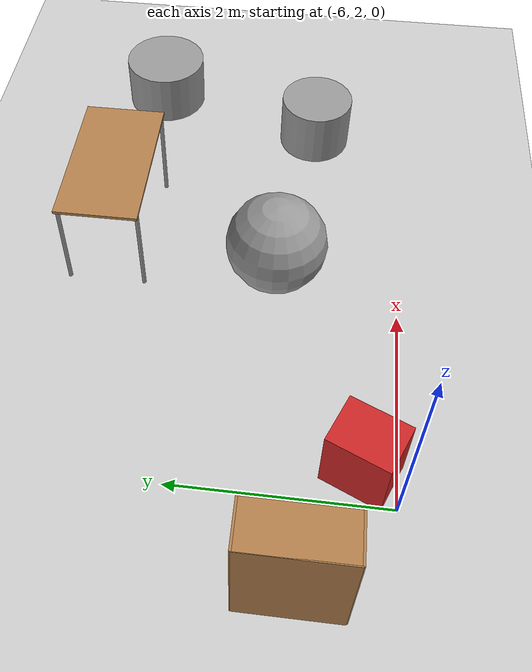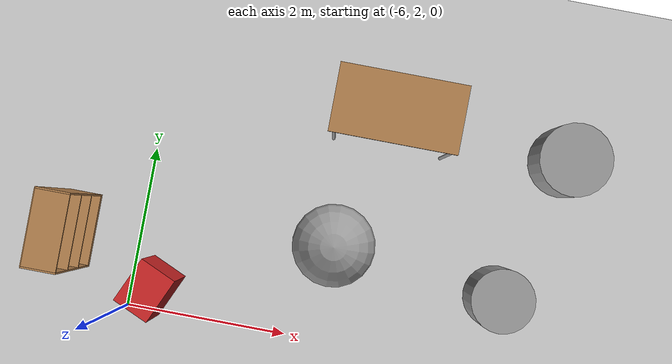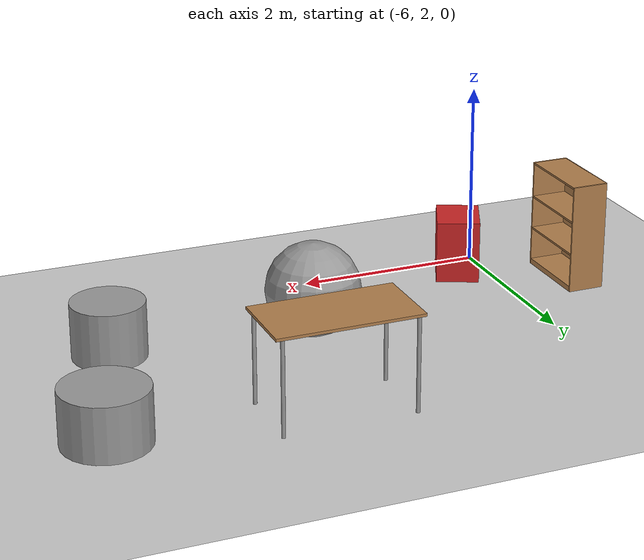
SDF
<sdf version="1.6">
 <world name="default">
  <model name="ground_plane">
   <static>1</static>
   <link name="link">
    <collision name="collision">
     <geometry><plane><normal>0 0 1</normal><size>100 100</size></plane></geometry>
     <surface>
      <contact><collide_bitmask>65535</collide_bitmask></contact>
      <friction><ode><mu>100</mu><mu2>50</mu2></ode></friction>
     </surface>
    </collision>
    <visual name="visual">
     <cast_shadows>0</cast_shadows>
     <geometry><plane><normal>0 0 1</normal><size>100 100</size></plane></geometry>
     <material>
      <script><uri>file://media/materials/scripts/gazebo.material</uri><name>Gazebo/Grey</name></script>
     </material>
    </visual>
   </link>
  </model>
  <model name="bookshelf">
   <static>1</static>
   <link name="link">
    <inertial><mass>1</mass></inertial>
    <collision name="back">
     <pose>0 0.005 0.6 0 -0 0</pose>
     <geometry><box><size>0.9 0.01 1.2</size></box></geometry>
    </collision>
    <visual name="visual1">
     <pose>0 0.005 0.6 0 -0 0</pose>
     <geometry><box><size>0.9 0.01 1.2</size></box></geometry>
     <material>
      <script><uri>file://media/materials/scripts/gazebo.material</uri><name>Gazebo/Wood</name></script>
     </material>
    </visual>
    <collision name="left_side">
     <pose>0.45 -0.195 0.6 0 -0 0</pose>
     <geometry><box><size>0.02 0.4 1.2</size></box></geometry>
    </collision>
    <visual name="visual2">
     <pose>0.45 -0.195 0.6 0 -0 0</pose>
     <geometry><box><size>0.02 0.4 1.2</size></box></geometry>
     <material>
      <script><uri>file://media/materials/scripts/gazebo.material</uri><name>Gazebo/Wood</name></script>
     </material>
    </visual>
    <collision name="right_side">
     <pose>-0.45 -0.195 0.6 0 -0 0</pose>
     <geometry><box><size>0.02 0.4 1.2</size></box></geometry>
    </collision>
    <visual name="visual3">
     <pose>-0.45 -0.195 0.6 0 -0 0</pose>
     <geometry><box><size>0.02 0.4 1.2</size></box></geometry>
     <material>
      <script><uri>file://media/materials/scripts/gazebo.material</uri><name>Gazebo/Wood</name></script>
     </material>
    </visual>
    <collision name="bottom">
     <pose>0 -0.195 0.03 0 -0 0</pose>
     <geometry><box><size>0.88 0.4 0.06</size></box></geometry>
    </collision>
    <visual name="visual4">
     <pose>0 -0.195 0.03 0 -0 0</pose>
     <geometry><box><size>0.88 0.4 0.06</size></box></geometry>
     <material>
      <script><uri>file://media/materials/scripts/gazebo.material</uri><name>Gazebo/Wood</name></script>
     </material>
    </visual>
    <collision name="top">
     <pose>0 -0.195 1.19 0 -0 0</pose>
     <geometry><box><size>0.88 0.4 0.02</size></box></geometry>
    </collision>
    <visual name="visual5">
     <pose>0 -0.195 1.19 0 -0 0</pose>
     <geometry><box><size>0.88 0.4 0.02</size></box></geometry>
     <material>
      <script><uri>file://media/materials/scripts/gazebo.material</uri><name>Gazebo/Wood</name></script>
     </material>
    </visual>
    <collision name="low_shelf">
     <pose>0 -0.195 0.43 0 -0 0</pose>
     <geometry><box><size>0.88 0.4 0.02</size></box></geometry>
    </collision>
    <visual name="visual6">
     <pose>0 -0.195 0.43 0 -0 0</pose>
     <geometry><box><size>0.88 0.4 0.02</size></box></geometry>
     <material>
      <script><uri>file://media/materials/scripts/gazebo.material</uri><name>Gazebo/Wood</name></script>
     </material>
    </visual>
    <collision name="high_shelf">
     <pose>0 -0.195 0.8 0 -0 0</pose>
     <geometry><box><size>0.88 0.4 0.02</size></box></geometry>
    </collision>
    <visual name="visual7">
     <pose>0 -0.195 0.8 0 -0 0</pose>
     <geometry><box><size>0.88 0.4 0.02</size></box></geometry>
     <material>
      <script><uri>file://media/materials/scripts/gazebo.material</uri><name>Gazebo/Wood</name></script>
     </material>
    </visual>
   </link>
   <pose>-6.96679 2.8402 0 0 -0 1.5708</pose>
  </model>
  <model name="table">
   <static>1</static>
   <link name="link">
    <collision name="surface">
     <pose>0 0 1 0 -0 0</pose>
     <geometry><box><size>1.5 0.8 0.03</size></box></geometry>
     <surface><friction><ode><mu>0.6</mu><mu2>0.6</mu2></ode></friction></surface>
    </collision>
    <visual name="visual1">
     <pose>0 0 1 0 -0 0</pose>
     <geometry><box><size>1.5 0.8 0.03</size></box></geometry>
     <material>
      <script><uri>file://media/materials/scripts/gazebo.material</uri><name>Gazebo/Wood</name></script>
     </material>
    </visual>
    <collision name="front_left_leg">
     <pose>0.68 0.38 0.5 0 -0 0</pose>
     <geometry><cylinder><radius>0.02</radius><length>1</length></cylinder></geometry>
    </collision>
    <visual name="front_left_leg">
     <pose>0.68 0.38 0.5 0 -0 0</pose>
     <geometry><cylinder><radius>0.02</radius><length>1</length></cylinder></geometry>
     <material>
      <script><uri>file://media/materials/scripts/gazebo.material</uri><name>Gazebo/Grey</name></script>
     </material>
    </visual>
    <collision name="front_right_leg">
     <pose>0.68 -0.38 0.5 0 -0 0</pose>
     <geometry><cylinder><radius>0.02</radius><length>1</length></cylinder></geometry>
    </collision>
    <visual name="front_right_leg">
     <pose>0.68 -0.38 0.5 0 -0 0</pose>
     <geometry><cylinder><radius>0.02</radius><length>1</length></cylinder></geometry>
     <material>
      <script><uri>file://media/materials/scripts/gazebo.material</uri><name>Gazebo/Grey</name></script>
     </material>
    </visual>
    <collision name="back_right_leg">
     <pose>-0.68 -0.38 0.5 0 -0 0</pose>
     <geometry><cylinder><radius>0.02</radius><length>1</length></cylinder></geometry>
    </collision>
    <visual name="back_right_leg">
     <pose>-0.68 -0.38 0.5 0 -0 0</pose>
     <geometry><cylinder><radius>0.02</radius><length>1</length></cylinder></geometry>
     <material>
      <script><uri>file://media/materials/scripts/gazebo.material</uri><name>Gazebo/Grey</name></script>
     </material>
    </visual>
    <collision name="back_left_leg">
     <pose>-0.68 0.38 0.5 0 -0 0</pose>
     <geometry><cylinder><radius>0.02</radius><length>1</length></cylinder></geometry>
    </collision>
    <visual name="back_left_leg">
     <pose>-0.68 0.38 0.5 0 -0 0</pose>
     <geometry><cylinder><radius>0.02</radius><length>1</length></cylinder></geometry>
     <material>
      <script><uri>file://media/materials/scripts/gazebo.material</uri><name>Gazebo/Grey</name></script>
     </material>
    </visual>
   </link>
   <pose>-3.15936 4.91977 0 0 -0 0</pose>
  </model>
  <model name="unit_cylinder">
   <pose>-0.951249 4.77245 0.286507 0 0 -0.507211</pose>
   <link name="link">
    <inertial>
     <mass>1</mass>
     <inertia><ixx>0.145833</ixx><ixy>0</ixy><ixz>0</ixz><iyy>0.145833</iyy><iyz>0</iyz><izz>0.125</izz></inertia>
    </inertial>
    <collision name="collision">
     <geometry><cylinder><radius>0.443131</radius><length>0.573015</length></cylinder></geometry>
    </collision>
    <visual name="visual">
     <geometry><cylinder><radius>0.443131</radius><length>0.573015</length></cylinder></geometry>
     <material>
      <script><name>Gazebo/Grey</name><uri>file://media/materials/scripts/gazebo.material</uri></script>
     </material>
    </visual>
   </link>
  </model>
  <model name="unit_sphere">
   <pose>-3.59754 3.23444 0.5 0 -0 0</pose>
   <link name="link">
    <inertial>
     <mass>1</mass>
     <inertia><ixx>0.1</ixx><ixy>0</ixy><ixz>0</ixz><iyy>0.1</iyy><iyz>0</iyz><izz>0.1</izz></inertia>
    </inertial>
    <collision name="collision"><geometry><sphere><radius>0.5</radius></sphere></geometry></collision>
    <visual name="visual">
     <geometry><sphere><radius>0.5</radius></sphere></geometry>
     <material>
      <script><name>Gazebo/Grey</name><uri>file://media/materials/scripts/gazebo.material</uri></script>
     </material>
    </visual>
   </link>
  </model>
  <model name="unit_cylinder_0">
   <pose>-1.50045 2.96064 0.299235 0 0 -1.03302</pose>
   <link name="link">
    <inertial>
     <mass>1</mass>
     <inertia><ixx>0.145833</ixx><ixy>0</ixy><ixz>0</ixz><iyy>0.145833</iyy><iyz>0</iyz><izz>0.125</izz></inertia>
    </inertial>
    <collision name="collision">
     <geometry><cylinder><radius>0.386388</radius><length>0.59847</length></cylinder></geometry>
    </collision>
    <visual name="visual">
     <geometry><cylinder><radius>0.386388</radius><length>0.59847</length></cylinder></geometry>
     <material>
      <script><name>Gazebo/Grey</name><uri>file://media/materials/scripts/gazebo.material</uri></script>
     </material>
    </visual>
   </link>
  </model>
  <model name="unit_box_3_clone_2">
   <link name="link">
    <inertial>
     <mass>1</mass>
     <inertia>
      <ixx>0.166667</ixx>
      <ixy>0</ixy>
      <ixz>0</ixz>
      <iyy>0.166667</iyy>
      <iyz>0</iyz>
      <izz>0.166667</izz>
     </inertia>
    </inertial>
    <visual name="visual">
     <geometry><box><size>0.46783 0.587718 0.68729</size></box></geometry>
     <material>
      <script><name>Gazebo/Red</name><uri>file://media/materials/scripts/gazebo.material</uri></script>
      <shader type="pixel"><normal_map>__default__</normal_map></shader>
      <ambient>1 0 0 1</ambient>
      <diffuse>1 0 0 1</diffuse>
      <specular>0.1 0.1 0.1 1</specular>
      <emissive>0 0 0 1</emissive>
     </material>
    </visual>
    <collision name="collision">
     <geometry><box><size>0.46783 0.587718 0.68729</size></box></geometry>
     <surface>
      <friction>
       <ode><mu>1</mu><mu2>1</mu2><fdir1>0 0 0</fdir1><slip1>0</slip1><slip2>0</slip2></ode>
       <torsional>
        <coefficient>1</coefficient>
        <patch_radius>0</patch_radius>
        <surface_radius>0</surface_radius>
        <use_patch_radius>1</use_patch_radius>
        <ode><slip>0</slip></ode>
       </torsional>
      </friction>
      <bounce><restitution_coefficient>0</restitution_coefficient><threshold>1e+06</threshold></bounce>
      <contact>
       <collide_without_contact>0</collide_without_contact>
       <collide_without_contact_bitmask>1</collide_without_contact_bitmask>
       <collide_bitmask>1</collide_bitmask>
       <ode>
        <soft_cfm>0</soft_cfm>
        <soft_erp>0.2</soft_erp>
        <kp>1e+13</kp>
        <kd>1</kd>
        <max_vel>0.01</max_vel>
        <min_depth>0</min_depth>
       </ode>
       <bullet>
        <split_impulse>1</split_impulse>
        <split_impulse_penetration_threshold>-0.01</split_impulse_penetration_threshold>
        <soft_cfm>0</soft_cfm>
        <soft_erp>0.2</soft_erp>
        <kp>1e+13</kp>
        <kd>1</kd>
       </bullet>
      </contact>
     </surface>
    </collision>
   </link>
   <static>0</static>
   <pose>-5.68656 2.31135 0.343645 0 -0 -0.420452</pose>
  </model>
 </world>
</sdf>
